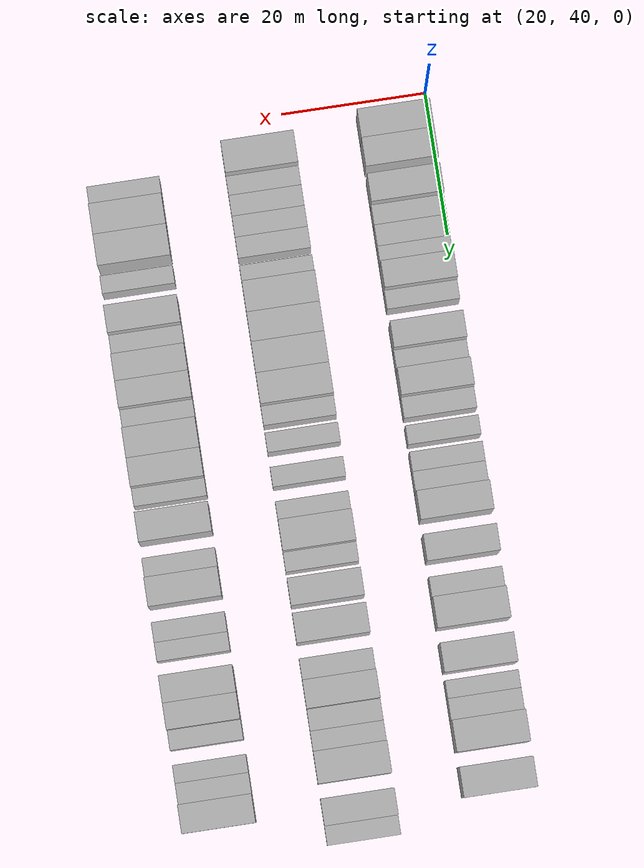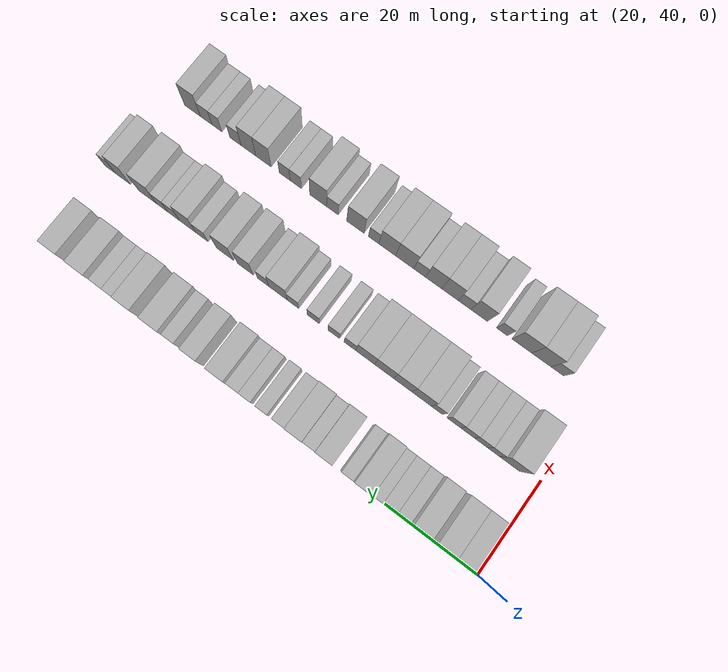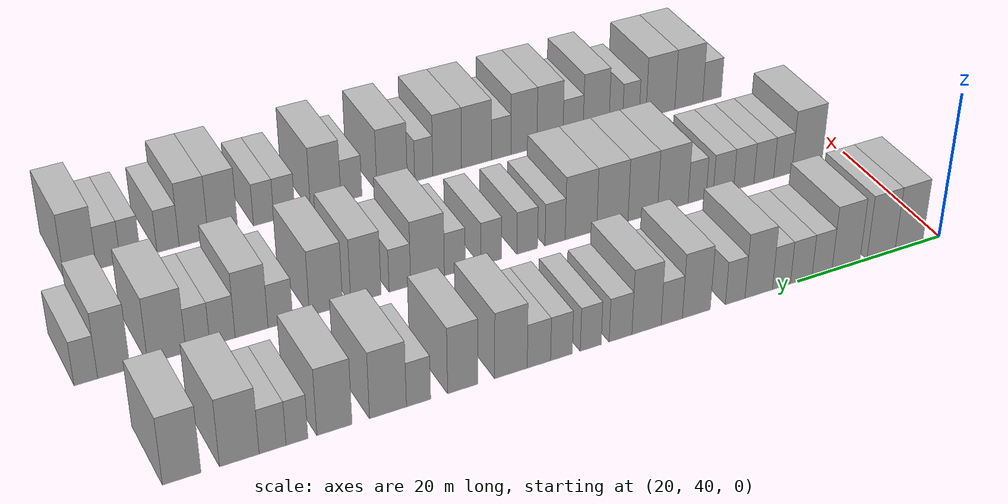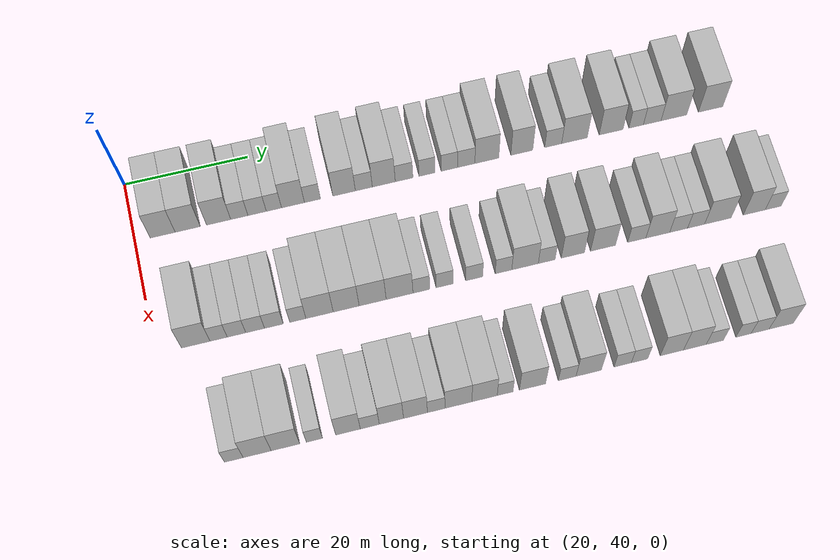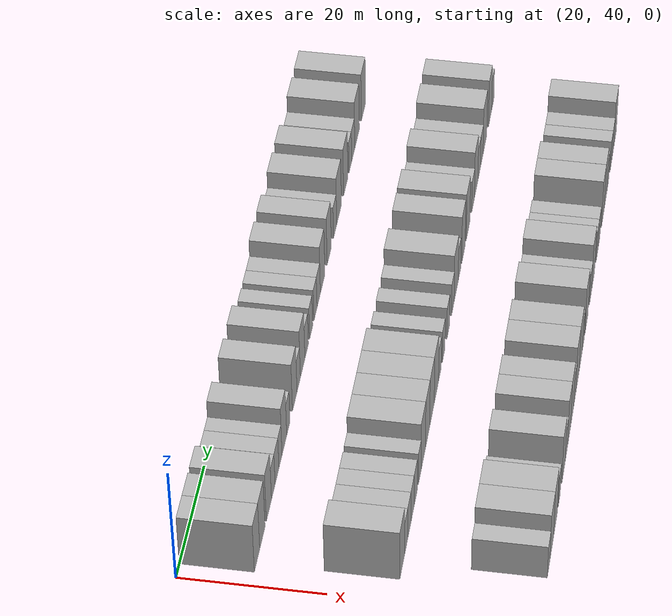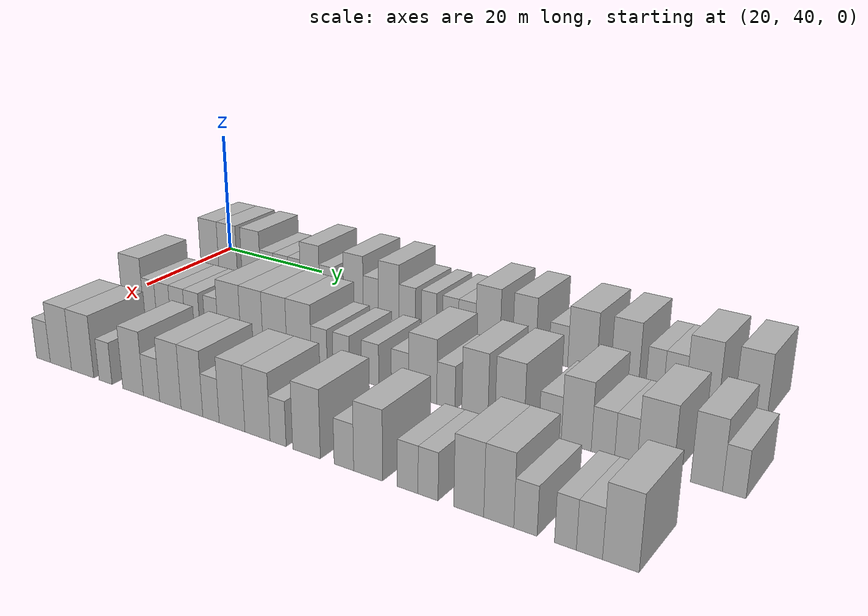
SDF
<sdf version="1.6">
 <world name="default">
  <model name="building_72">
   <static>1</static>
   <pose>25.0000 44.4156 0 0.000000 0.000000 0.000000</pose>
   <link name="link">
    <pose>0 0 4.50 0 0 0</pose>
    <collision name="collision"><geometry><box><size>10.0000 3.9680 9.0000</size></box></geometry></collision>
    <visual name="visual">
     <cast_shadows>0</cast_shadows>
     <geometry><box><size>10.0000 3.9680 9.0000</size></box></geometry>
     <material>
      <script>
       <uri>model://HANNAS_wall/materials/scripts</uri>
       <uri>model://HANNAS_wall/materials/textures</uri>
       <name>vrc/HANNAS_wall</name>
      </script>
     </material>
    </visual>
   </link>
  </model>
  <model name="building_73">
   <static>1</static>
   <pose>25.0000 48.4043 0 0.000000 0.000000 0.000000</pose>
   <link name="link">
    <pose>0 0 4.50 0 0 0</pose>
    <collision name="collision"><geometry><box><size>10.0000 4.0092 9.0000</size></box></geometry></collision>
    <visual name="visual">
     <cast_shadows>0</cast_shadows>
     <geometry><box><size>10.0000 4.0092 9.0000</size></box></geometry>
     <material>
      <script>
       <uri>model://HANNAS_wall/materials/scripts</uri>
       <uri>model://HANNAS_wall/materials/textures</uri>
       <name>vrc/HANNAS_wall</name>
      </script>
     </material>
    </visual>
   </link>
  </model>
  <model name="building_74">
   <static>1</static>
   <pose>25.0000 53.3539 0 0.000000 0.000000 0.000000</pose>
   <link name="link">
    <pose>0 0 4.50 0 0 0</pose>
    <collision name="collision"><geometry><box><size>10.0000 3.8900 9.0000</size></box></geometry></collision>
    <visual name="visual">
     <cast_shadows>0</cast_shadows>
     <geometry><box><size>10.0000 3.8900 9.0000</size></box></geometry>
     <material>
      <script>
       <uri>model://HANNAS_wall/materials/scripts</uri>
       <uri>model://HANNAS_wall/materials/textures</uri>
       <name>vrc/HANNAS_wall</name>
      </script>
     </material>
    </visual>
   </link>
  </model>
  <model name="building_75">
   <static>1</static>
   <pose>25.0000 56.6815 0 0.000000 0.000000 0.000000</pose>
   <link name="link">
    <pose>0 0 3.00 0 0 0</pose>
    <collision name="collision"><geometry><box><size>10.0000 2.7651 6.0000</size></box></geometry></collision>
    <visual name="visual">
     <cast_shadows>0</cast_shadows>
     <geometry><box><size>10.0000 2.7651 6.0000</size></box></geometry>
     <material>
      <script>
       <uri>model://HANNAS_wall/materials/scripts</uri>
       <uri>model://HANNAS_wall/materials/textures</uri>
       <name>vrc/HANNAS_wall</name>
      </script>
     </material>
    </visual>
   </link>
  </model>
  <model name="building_76">
   <static>1</static>
   <pose>25.0000 59.5427 0 0.000000 0.000000 0.000000</pose>
   <link name="link">
    <pose>0 0 3.00 0 0 0</pose>
    <collision name="collision"><geometry><box><size>10.0000 2.9574 6.0000</size></box></geometry></collision>
    <visual name="visual">
     <cast_shadows>0</cast_shadows>
     <geometry><box><size>10.0000 2.9574 6.0000</size></box></geometry>
     <material>
      <script>
       <uri>model://HANNAS_wall/materials/scripts</uri>
       <uri>model://HANNAS_wall/materials/textures</uri>
       <name>vrc/HANNAS_wall</name>
      </script>
     </material>
    </visual>
   </link>
  </model>
  <model name="building_77">
   <static>1</static>
   <pose>25.0000 62.2518 0 0.000000 0.000000 0.000000</pose>
   <link name="link">
    <pose>0 0 3.00 0 0 0</pose>
    <collision name="collision"><geometry><box><size>10.0000 2.4609 6.0000</size></box></geometry></collision>
    <visual name="visual">
     <cast_shadows>0</cast_shadows>
     <geometry><box><size>10.0000 2.4609 6.0000</size></box></geometry>
     <material>
      <script>
       <uri>model://HANNAS_wall/materials/scripts</uri>
       <uri>model://HANNAS_wall/materials/textures</uri>
       <name>vrc/HANNAS_wall</name>
      </script>
     </material>
    </visual>
   </link>
  </model>
  <model name="building_78">
   <static>1</static>
   <pose>25.0000 65.3346 0 0.000000 0.000000 0.000000</pose>
   <link name="link">
    <pose>0 0 4.50 0 0 0</pose>
    <collision name="collision"><geometry><box><size>10.0000 3.7047 9.0000</size></box></geometry></collision>
    <visual name="visual">
     <cast_shadows>0</cast_shadows>
     <geometry><box><size>10.0000 3.7047 9.0000</size></box></geometry>
     <material>
      <script>
       <uri>model://HANNAS_wall/materials/scripts</uri>
       <uri>model://HANNAS_wall/materials/textures</uri>
       <name>vrc/HANNAS_wall</name>
      </script>
     </material>
    </visual>
   </link>
  </model>
  <model name="building_79">
   <static>1</static>
   <pose>25.0000 68.4920 0 0.000000 0.000000 0.000000</pose>
   <link name="link">
    <pose>0 0 3.00 0 0 0</pose>
    <collision name="collision"><geometry><box><size>10.0000 2.6101 6.0000</size></box></geometry></collision>
    <visual name="visual">
     <cast_shadows>0</cast_shadows>
     <geometry><box><size>10.0000 2.6101 6.0000</size></box></geometry>
     <material>
      <script>
       <uri>model://HANNAS_wall/materials/scripts</uri>
       <uri>model://HANNAS_wall/materials/textures</uri>
       <name>vrc/HANNAS_wall</name>
      </script>
     </material>
    </visual>
   </link>
  </model>
  <model name="building_80">
   <static>1</static>
   <pose>25.0000 73.6323 0 0.000000 0.000000 0.000000</pose>
   <link name="link">
    <pose>0 0 4.50 0 0 0</pose>
    <collision name="collision"><geometry><box><size>10.0000 3.6704 9.0000</size></box></geometry></collision>
    <visual name="visual">
     <cast_shadows>0</cast_shadows>
     <geometry><box><size>10.0000 3.6704 9.0000</size></box></geometry>
     <material>
      <script>
       <uri>model://HANNAS_wall/materials/scripts</uri>
       <uri>model://HANNAS_wall/materials/textures</uri>
       <name>vrc/HANNAS_wall</name>
      </script>
     </material>
    </visual>
   </link>
  </model>
  <model name="building_81">
   <static>1</static>
   <pose>25.0000 76.8547 0 0.000000 0.000000 0.000000</pose>
   <link name="link">
    <pose>0 0 3.00 0 0 0</pose>
    <collision name="collision"><geometry><box><size>10.0000 2.7742 6.0000</size></box></geometry></collision>
    <visual name="visual">
     <cast_shadows>0</cast_shadows>
     <geometry><box><size>10.0000 2.7742 6.0000</size></box></geometry>
     <material>
      <script>
       <uri>model://HANNAS_wall/materials/scripts</uri>
       <uri>model://HANNAS_wall/materials/textures</uri>
       <name>vrc/HANNAS_wall</name>
      </script>
     </material>
    </visual>
   </link>
  </model>
  <model name="building_82">
   <static>1</static>
   <pose>25.0000 80.1167 0 0.000000 0.000000 0.000000</pose>
   <link name="link">
    <pose>0 0 4.50 0 0 0</pose>
    <collision name="collision"><geometry><box><size>10.0000 3.7498 9.0000</size></box></geometry></collision>
    <visual name="visual">
     <cast_shadows>0</cast_shadows>
     <geometry><box><size>10.0000 3.7498 9.0000</size></box></geometry>
     <material>
      <script>
       <uri>model://HANNAS_wall/materials/scripts</uri>
       <uri>model://HANNAS_wall/materials/textures</uri>
       <name>vrc/HANNAS_wall</name>
      </script>
     </material>
    </visual>
   </link>
  </model>
  <model name="building_83">
   <static>1</static>
   <pose>25.0000 83.4414 0 0.000000 0.000000 0.000000</pose>
   <link name="link">
    <pose>0 0 3.00 0 0 0</pose>
    <collision name="collision"><geometry><box><size>10.0000 2.8997 6.0000</size></box></geometry></collision>
    <visual name="visual">
     <cast_shadows>0</cast_shadows>
     <geometry><box><size>10.0000 2.8997 6.0000</size></box></geometry>
     <material>
      <script>
       <uri>model://HANNAS_wall/materials/scripts</uri>
       <uri>model://HANNAS_wall/materials/textures</uri>
       <name>vrc/HANNAS_wall</name>
      </script>
     </material>
    </visual>
   </link>
  </model>
  <model name="building_84">
   <static>1</static>
   <pose>25.0000 87.2093 0 0.000000 0.000000 0.000000</pose>
   <link name="link">
    <pose>0 0 3.00 0 0 0</pose>
    <collision name="collision"><geometry><box><size>10.0000 2.6360 6.0000</size></box></geometry></collision>
    <visual name="visual">
     <cast_shadows>0</cast_shadows>
     <geometry><box><size>10.0000 2.6360 6.0000</size></box></geometry>
     <material>
      <script>
       <uri>model://HANNAS_wall/materials/scripts</uri>
       <uri>model://HANNAS_wall/materials/textures</uri>
       <name>vrc/HANNAS_wall</name>
      </script>
     </material>
    </visual>
   </link>
  </model>
  <model name="building_85">
   <static>1</static>
   <pose>25.0000 90.8741 0 0.000000 0.000000 0.000000</pose>
   <link name="link">
    <pose>0 0 3.00 0 0 0</pose>
    <collision name="collision"><geometry><box><size>10.0000 2.6937 6.0000</size></box></geometry></collision>
    <visual name="visual">
     <cast_shadows>0</cast_shadows>
     <geometry><box><size>10.0000 2.6937 6.0000</size></box></geometry>
     <material>
      <script>
       <uri>model://HANNAS_wall/materials/scripts</uri>
       <uri>model://HANNAS_wall/materials/textures</uri>
       <name>vrc/HANNAS_wall</name>
      </script>
     </material>
    </visual>
   </link>
  </model>
  <model name="building_86">
   <static>1</static>
   <pose>25.0000 93.6597 0 0.000000 0.000000 0.000000</pose>
   <link name="link">
    <pose>0 0 3.00 0 0 0</pose>
    <collision name="collision"><geometry><box><size>10.0000 2.8775 6.0000</size></box></geometry></collision>
    <visual name="visual">
     <cast_shadows>0</cast_shadows>
     <geometry><box><size>10.0000 2.8775 6.0000</size></box></geometry>
     <material>
      <script>
       <uri>model://HANNAS_wall/materials/scripts</uri>
       <uri>model://HANNAS_wall/materials/textures</uri>
       <name>vrc/HANNAS_wall</name>
      </script>
     </material>
    </visual>
   </link>
  </model>
  <model name="building_87">
   <static>1</static>
   <pose>25.0000 97.0796 0 0.000000 0.000000 0.000000</pose>
   <link name="link">
    <pose>0 0 4.50 0 0 0</pose>
    <collision name="collision"><geometry><box><size>10.0000 3.9623 9.0000</size></box></geometry></collision>
    <visual name="visual">
     <cast_shadows>0</cast_shadows>
     <geometry><box><size>10.0000 3.9623 9.0000</size></box></geometry>
     <material>
      <script>
       <uri>model://HANNAS_wall/materials/scripts</uri>
       <uri>model://HANNAS_wall/materials/textures</uri>
       <name>vrc/HANNAS_wall</name>
      </script>
     </material>
    </visual>
   </link>
  </model>
  <model name="building_88">
   <static>1</static>
   <pose>25.0000 102.8813 0 0.000000 0.000000 0.000000</pose>
   <link name="link">
    <pose>0 0 4.50 0 0 0</pose>
    <collision name="collision"><geometry><box><size>10.0000 3.6410 9.0000</size></box></geometry></collision>
    <visual name="visual">
     <cast_shadows>0</cast_shadows>
     <geometry><box><size>10.0000 3.6410 9.0000</size></box></geometry>
     <material>
      <script>
       <uri>model://HANNAS_wall/materials/scripts</uri>
       <uri>model://HANNAS_wall/materials/textures</uri>
       <name>vrc/HANNAS_wall</name>
      </script>
     </material>
    </visual>
   </link>
  </model>
  <model name="building_89">
   <static>1</static>
   <pose>25.0000 108.1244 0 0.000000 0.000000 0.000000</pose>
   <link name="link">
    <pose>0 0 3.00 0 0 0</pose>
    <collision name="collision"><geometry><box><size>10.0000 2.8451 6.0000</size></box></geometry></collision>
    <visual name="visual">
     <cast_shadows>0</cast_shadows>
     <geometry><box><size>10.0000 2.8451 6.0000</size></box></geometry>
     <material>
      <script>
       <uri>model://HANNAS_wall/materials/scripts</uri>
       <uri>model://HANNAS_wall/materials/textures</uri>
       <name>vrc/HANNAS_wall</name>
      </script>
     </material>
    </visual>
   </link>
  </model>
  <model name="building_90">
   <static>1</static>
   <pose>25.0000 111.6880 0 0.000000 0.000000 0.000000</pose>
   <link name="link">
    <pose>0 0 4.50 0 0 0</pose>
    <collision name="collision"><geometry><box><size>10.0000 4.2822 9.0000</size></box></geometry></collision>
    <visual name="visual">
     <cast_shadows>0</cast_shadows>
     <geometry><box><size>10.0000 4.2822 9.0000</size></box></geometry>
     <material>
      <script>
       <uri>model://HANNAS_wall/materials/scripts</uri>
       <uri>model://HANNAS_wall/materials/textures</uri>
       <name>vrc/HANNAS_wall</name>
      </script>
     </material>
    </visual>
   </link>
  </model>
  <model name="building_91">
   <static>1</static>
   <pose>25.0000 117.8321 0 0.000000 0.000000 0.000000</pose>
   <link name="link">
    <pose>0 0 4.50 0 0 0</pose>
    <collision name="collision"><geometry><box><size>10.0000 4.0060 9.0000</size></box></geometry></collision>
    <visual name="visual">
     <cast_shadows>0</cast_shadows>
     <geometry><box><size>10.0000 4.0060 9.0000</size></box></geometry>
     <material>
      <script>
       <uri>model://HANNAS_wall/materials/scripts</uri>
       <uri>model://HANNAS_wall/materials/textures</uri>
       <name>vrc/HANNAS_wall</name>
      </script>
     </material>
    </visual>
   </link>
  </model>
  <model name="building_92">
   <static>1</static>
   <pose>25.0000 122.0588 0 0.000000 0.000000 0.000000</pose>
   <link name="link">
    <pose>0 0 3.00 0 0 0</pose>
    <collision name="collision"><geometry><box><size>10.0000 2.4473 6.0000</size></box></geometry></collision>
    <visual name="visual">
     <cast_shadows>0</cast_shadows>
     <geometry><box><size>10.0000 2.4473 6.0000</size></box></geometry>
     <material>
      <script>
       <uri>model://HANNAS_wall/materials/scripts</uri>
       <uri>model://HANNAS_wall/materials/textures</uri>
       <name>vrc/HANNAS_wall</name>
      </script>
     </material>
    </visual>
   </link>
  </model>
  <model name="building_93">
   <static>1</static>
   <pose>25.0000 124.7757 0 0.000000 0.000000 0.000000</pose>
   <link name="link">
    <pose>0 0 3.00 0 0 0</pose>
    <collision name="collision"><geometry><box><size>10.0000 2.9865 6.0000</size></box></geometry></collision>
    <visual name="visual">
     <cast_shadows>0</cast_shadows>
     <geometry><box><size>10.0000 2.9865 6.0000</size></box></geometry>
     <material>
      <script>
       <uri>model://HANNAS_wall/materials/scripts</uri>
       <uri>model://HANNAS_wall/materials/textures</uri>
       <name>vrc/HANNAS_wall</name>
      </script>
     </material>
    </visual>
   </link>
  </model>
  <model name="building_94">
   <static>1</static>
   <pose>25.0000 128.4444 0 0.000000 0.000000 0.000000</pose>
   <link name="link">
    <pose>0 0 4.50 0 0 0</pose>
    <collision name="collision"><geometry><box><size>10.0000 4.3510 9.0000</size></box></geometry></collision>
    <visual name="visual">
     <cast_shadows>0</cast_shadows>
     <geometry><box><size>10.0000 4.3510 9.0000</size></box></geometry>
     <material>
      <script>
       <uri>model://HANNAS_wall/materials/scripts</uri>
       <uri>model://HANNAS_wall/materials/textures</uri>
       <name>vrc/HANNAS_wall</name>
      </script>
     </material>
    </visual>
   </link>
  </model>
  <model name="building_95">
   <static>1</static>
   <pose>25.0000 134.6922 0 0.000000 0.000000 0.000000</pose>
   <link name="link">
    <pose>0 0 4.50 0 0 0</pose>
    <collision name="collision"><geometry><box><size>10.0000 4.1447 9.0000</size></box></geometry></collision>
    <visual name="visual">
     <cast_shadows>0</cast_shadows>
     <geometry><box><size>10.0000 4.1447 9.0000</size></box></geometry>
     <material>
      <script>
       <uri>model://HANNAS_wall/materials/scripts</uri>
       <uri>model://HANNAS_wall/materials/textures</uri>
       <name>vrc/HANNAS_wall</name>
      </script>
     </material>
    </visual>
   </link>
  </model>
  <model name="building_194">
   <static>1</static>
   <pose>44.0000 46.1868 0 0.000000 0.000000 0.000000</pose>
   <link name="link">
    <pose>0 0 4.50 0 0 0</pose>
    <collision name="collision"><geometry><box><size>10.0000 4.4482 9.0000</size></box></geometry></collision>
    <visual name="visual">
     <cast_shadows>0</cast_shadows>
     <geometry><box><size>10.0000 4.4482 9.0000</size></box></geometry>
     <material>
      <script>
       <uri>model://HANNAS_wall/materials/scripts</uri>
       <uri>model://HANNAS_wall/materials/textures</uri>
       <name>vrc/HANNAS_wall</name>
      </script>
     </material>
    </visual>
   </link>
  </model>
  <model name="building_195">
   <static>1</static>
   <pose>44.0000 49.7414 0 0.000000 0.000000 0.000000</pose>
   <link name="link">
    <pose>0 0 3.00 0 0 0</pose>
    <collision name="collision"><geometry><box><size>10.0000 2.6610 6.0000</size></box></geometry></collision>
    <visual name="visual">
     <cast_shadows>0</cast_shadows>
     <geometry><box><size>10.0000 2.6610 6.0000</size></box></geometry>
     <material>
      <script>
       <uri>model://HANNAS_wall/materials/scripts</uri>
       <uri>model://HANNAS_wall/materials/textures</uri>
       <name>vrc/HANNAS_wall</name>
      </script>
     </material>
    </visual>
   </link>
  </model>
  <model name="building_196">
   <static>1</static>
   <pose>44.0000 52.5175 0 0.000000 0.000000 0.000000</pose>
   <link name="link">
    <pose>0 0 3.00 0 0 0</pose>
    <collision name="collision"><geometry><box><size>10.0000 2.8911 6.0000</size></box></geometry></collision>
    <visual name="visual">
     <cast_shadows>0</cast_shadows>
     <geometry><box><size>10.0000 2.8911 6.0000</size></box></geometry>
     <material>
      <script>
       <uri>model://HANNAS_wall/materials/scripts</uri>
       <uri>model://HANNAS_wall/materials/textures</uri>
       <name>vrc/HANNAS_wall</name>
      </script>
     </material>
    </visual>
   </link>
  </model>
  <model name="building_197">
   <static>1</static>
   <pose>44.0000 55.4296 0 0.000000 0.000000 0.000000</pose>
   <link name="link">
    <pose>0 0 3.00 0 0 0</pose>
    <collision name="collision"><geometry><box><size>10.0000 2.9331 6.0000</size></box></geometry></collision>
    <visual name="visual">
     <cast_shadows>0</cast_shadows>
     <geometry><box><size>10.0000 2.9331 6.0000</size></box></geometry>
     <material>
      <script>
       <uri>model://HANNAS_wall/materials/scripts</uri>
       <uri>model://HANNAS_wall/materials/textures</uri>
       <name>vrc/HANNAS_wall</name>
      </script>
     </material>
    </visual>
   </link>
  </model>
  <model name="building_198">
   <static>1</static>
   <pose>44.0000 58.3668 0 0.000000 0.000000 0.000000</pose>
   <link name="link">
    <pose>0 0 3.00 0 0 0</pose>
    <collision name="collision"><geometry><box><size>10.0000 2.9414 6.0000</size></box></geometry></collision>
    <visual name="visual">
     <cast_shadows>0</cast_shadows>
     <geometry><box><size>10.0000 2.9414 6.0000</size></box></geometry>
     <material>
      <script>
       <uri>model://HANNAS_wall/materials/scripts</uri>
       <uri>model://HANNAS_wall/materials/textures</uri>
       <name>vrc/HANNAS_wall</name>
      </script>
     </material>
    </visual>
   </link>
  </model>
  <model name="building_199">
   <static>1</static>
   <pose>44.0000 62.1112 0 0.000000 0.000000 0.000000</pose>
   <link name="link">
    <pose>0 0 3.00 0 0 0</pose>
    <collision name="collision"><geometry><box><size>10.0000 2.5472 6.0000</size></box></geometry></collision>
    <visual name="visual">
     <cast_shadows>0</cast_shadows>
     <geometry><box><size>10.0000 2.5472 6.0000</size></box></geometry>
     <material>
      <script>
       <uri>model://HANNAS_wall/materials/scripts</uri>
       <uri>model://HANNAS_wall/materials/textures</uri>
       <name>vrc/HANNAS_wall</name>
      </script>
     </material>
    </visual>
   </link>
  </model>
  <model name="building_200">
   <static>1</static>
   <pose>44.0000 65.5334 0 0.000000 0.000000 0.000000</pose>
   <link name="link">
    <pose>0 0 4.50 0 0 0</pose>
    <collision name="collision"><geometry><box><size>10.0000 4.2972 9.0000</size></box></geometry></collision>
    <visual name="visual">
     <cast_shadows>0</cast_shadows>
     <geometry><box><size>10.0000 4.2972 9.0000</size></box></geometry>
     <material>
      <script>
       <uri>model://HANNAS_wall/materials/scripts</uri>
       <uri>model://HANNAS_wall/materials/textures</uri>
       <name>vrc/HANNAS_wall</name>
      </script>
     </material>
    </visual>
   </link>
  </model>
  <model name="building_201">
   <static>1</static>
   <pose>44.0000 69.7283 0 0.000000 0.000000 0.000000</pose>
   <link name="link">
    <pose>0 0 4.50 0 0 0</pose>
    <collision name="collision"><geometry><box><size>10.0000 4.0927 9.0000</size></box></geometry></collision>
    <visual name="visual">
     <cast_shadows>0</cast_shadows>
     <geometry><box><size>10.0000 4.0927 9.0000</size></box></geometry>
     <material>
      <script>
       <uri>model://HANNAS_wall/materials/scripts</uri>
       <uri>model://HANNAS_wall/materials/textures</uri>
       <name>vrc/HANNAS_wall</name>
      </script>
     </material>
    </visual>
   </link>
  </model>
  <model name="building_202">
   <static>1</static>
   <pose>44.0000 73.9166 0 0.000000 0.000000 0.000000</pose>
   <link name="link">
    <pose>0 0 4.50 0 0 0</pose>
    <collision name="collision"><geometry><box><size>10.0000 4.2838 9.0000</size></box></geometry></collision>
    <visual name="visual">
     <cast_shadows>0</cast_shadows>
     <geometry><box><size>10.0000 4.2838 9.0000</size></box></geometry>
     <material>
      <script>
       <uri>model://HANNAS_wall/materials/scripts</uri>
       <uri>model://HANNAS_wall/materials/textures</uri>
       <name>vrc/HANNAS_wall</name>
      </script>
     </material>
    </visual>
   </link>
  </model>
  <model name="building_203">
   <static>1</static>
   <pose>44.0000 78.1900 0 0.000000 0.000000 0.000000</pose>
   <link name="link">
    <pose>0 0 4.50 0 0 0</pose>
    <collision name="collision"><geometry><box><size>10.0000 4.2629 9.0000</size></box></geometry></collision>
    <visual name="visual">
     <cast_shadows>0</cast_shadows>
     <geometry><box><size>10.0000 4.2629 9.0000</size></box></geometry>
     <material>
      <script>
       <uri>model://HANNAS_wall/materials/scripts</uri>
       <uri>model://HANNAS_wall/materials/textures</uri>
       <name>vrc/HANNAS_wall</name>
      </script>
     </material>
    </visual>
   </link>
  </model>
  <model name="building_204">
   <static>1</static>
   <pose>44.0000 81.6634 0 0.000000 0.000000 0.000000</pose>
   <link name="link">
    <pose>0 0 3.00 0 0 0</pose>
    <collision name="collision"><geometry><box><size>10.0000 2.6838 6.0000</size></box></geometry></collision>
    <visual name="visual">
     <cast_shadows>0</cast_shadows>
     <geometry><box><size>10.0000 2.6838 6.0000</size></box></geometry>
     <material>
      <script>
       <uri>model://HANNAS_wall/materials/scripts</uri>
       <uri>model://HANNAS_wall/materials/textures</uri>
       <name>vrc/HANNAS_wall</name>
      </script>
     </material>
    </visual>
   </link>
  </model>
  <model name="building_205">
   <static>1</static>
   <pose>44.0000 85.3662 0 0.000000 0.000000 0.000000</pose>
   <link name="link">
    <pose>0 0 3.00 0 0 0</pose>
    <collision name="collision"><geometry><box><size>10.0000 2.7219 6.0000</size></box></geometry></collision>
    <visual name="visual">
     <cast_shadows>0</cast_shadows>
     <geometry><box><size>10.0000 2.7219 6.0000</size></box></geometry>
     <material>
      <script>
       <uri>model://HANNAS_wall/materials/scripts</uri>
       <uri>model://HANNAS_wall/materials/textures</uri>
       <name>vrc/HANNAS_wall</name>
      </script>
     </material>
    </visual>
   </link>
  </model>
  <model name="building_206">
   <static>1</static>
   <pose>44.0000 90.0968 0 0.000000 0.000000 0.000000</pose>
   <link name="link">
    <pose>0 0 3.00 0 0 0</pose>
    <collision name="collision"><geometry><box><size>10.0000 2.7391 6.0000</size></box></geometry></collision>
    <visual name="visual">
     <cast_shadows>0</cast_shadows>
     <geometry><box><size>10.0000 2.7391 6.0000</size></box></geometry>
     <material>
      <script>
       <uri>model://HANNAS_wall/materials/scripts</uri>
       <uri>model://HANNAS_wall/materials/textures</uri>
       <name>vrc/HANNAS_wall</name>
      </script>
     </material>
    </visual>
   </link>
  </model>
  <model name="building_207">
   <static>1</static>
   <pose>44.0000 94.8058 0 0.000000 0.000000 0.000000</pose>
   <link name="link">
    <pose>0 0 3.00 0 0 0</pose>
    <collision name="collision"><geometry><box><size>10.0000 2.6789 6.0000</size></box></geometry></collision>
    <visual name="visual">
     <cast_shadows>0</cast_shadows>
     <geometry><box><size>10.0000 2.6789 6.0000</size></box></geometry>
     <material>
      <script>
       <uri>model://HANNAS_wall/materials/scripts</uri>
       <uri>model://HANNAS_wall/materials/textures</uri>
       <name>vrc/HANNAS_wall</name>
      </script>
     </material>
    </visual>
   </link>
  </model>
  <model name="building_208">
   <static>1</static>
   <pose>44.0000 98.2878 0 0.000000 0.000000 0.000000</pose>
   <link name="link">
    <pose>0 0 4.50 0 0 0</pose>
    <collision name="collision"><geometry><box><size>10.0000 4.2851 9.0000</size></box></geometry></collision>
    <visual name="visual">
     <cast_shadows>0</cast_shadows>
     <geometry><box><size>10.0000 4.2851 9.0000</size></box></geometry>
     <material>
      <script>
       <uri>model://HANNAS_wall/materials/scripts</uri>
       <uri>model://HANNAS_wall/materials/textures</uri>
       <name>vrc/HANNAS_wall</name>
      </script>
     </material>
    </visual>
   </link>
  </model>
  <model name="building_209">
   <static>1</static>
   <pose>44.0000 101.7869 0 0.000000 0.000000 0.000000</pose>
   <link name="link">
    <pose>0 0 3.00 0 0 0</pose>
    <collision name="collision"><geometry><box><size>10.0000 2.7131 6.0000</size></box></geometry></collision>
    <visual name="visual">
     <cast_shadows>0</cast_shadows>
     <geometry><box><size>10.0000 2.7131 6.0000</size></box></geometry>
     <material>
      <script>
       <uri>model://HANNAS_wall/materials/scripts</uri>
       <uri>model://HANNAS_wall/materials/textures</uri>
       <name>vrc/HANNAS_wall</name>
      </script>
     </material>
    </visual>
   </link>
  </model>
  <model name="building_210">
   <static>1</static>
   <pose>44.0000 106.0235 0 0.000000 0.000000 0.000000</pose>
   <link name="link">
    <pose>0 0 4.50 0 0 0</pose>
    <collision name="collision"><geometry><box><size>10.0000 3.7601 9.0000</size></box></geometry></collision>
    <visual name="visual">
     <cast_shadows>0</cast_shadows>
     <geometry><box><size>10.0000 3.7601 9.0000</size></box></geometry>
     <material>
      <script>
       <uri>model://HANNAS_wall/materials/scripts</uri>
       <uri>model://HANNAS_wall/materials/textures</uri>
       <name>vrc/HANNAS_wall</name>
      </script>
     </material>
    </visual>
   </link>
  </model>
  <model name="building_211">
   <static>1</static>
   <pose>44.0000 110.9353 0 0.000000 0.000000 0.000000</pose>
   <link name="link">
    <pose>0 0 4.50 0 0 0</pose>
    <collision name="collision"><geometry><box><size>10.0000 4.0637 9.0000</size></box></geometry></collision>
    <visual name="visual">
     <cast_shadows>0</cast_shadows>
     <geometry><box><size>10.0000 4.0637 9.0000</size></box></geometry>
     <material>
      <script>
       <uri>model://HANNAS_wall/materials/scripts</uri>
       <uri>model://HANNAS_wall/materials/textures</uri>
       <name>vrc/HANNAS_wall</name>
      </script>
     </material>
    </visual>
   </link>
  </model>
  <model name="building_212">
   <static>1</static>
   <pose>44.0000 116.4594 0 0.000000 0.000000 0.000000</pose>
   <link name="link">
    <pose>0 0 3.00 0 0 0</pose>
    <collision name="collision"><geometry><box><size>10.0000 2.9844 6.0000</size></box></geometry></collision>
    <visual name="visual">
     <cast_shadows>0</cast_shadows>
     <geometry><box><size>10.0000 2.9844 6.0000</size></box></geometry>
     <material>
      <script>
       <uri>model://HANNAS_wall/materials/scripts</uri>
       <uri>model://HANNAS_wall/materials/textures</uri>
       <name>vrc/HANNAS_wall</name>
      </script>
     </material>
    </visual>
   </link>
  </model>
  <model name="building_213">
   <static>1</static>
   <pose>44.0000 119.9058 0 0.000000 0.000000 0.000000</pose>
   <link name="link">
    <pose>0 0 4.50 0 0 0</pose>
    <collision name="collision"><geometry><box><size>10.0000 3.9085 9.0000</size></box></geometry></collision>
    <visual name="visual">
     <cast_shadows>0</cast_shadows>
     <geometry><box><size>10.0000 3.9085 9.0000</size></box></geometry>
     <material>
      <script>
       <uri>model://HANNAS_wall/materials/scripts</uri>
       <uri>model://HANNAS_wall/materials/textures</uri>
       <name>vrc/HANNAS_wall</name>
      </script>
     </material>
    </visual>
   </link>
  </model>
  <model name="building_214">
   <static>1</static>
   <pose>44.0000 123.3424 0 0.000000 0.000000 0.000000</pose>
   <link name="link">
    <pose>0 0 3.00 0 0 0</pose>
    <collision name="collision"><geometry><box><size>10.0000 2.9648 6.0000</size></box></geometry></collision>
    <visual name="visual">
     <cast_shadows>0</cast_shadows>
     <geometry><box><size>10.0000 2.9648 6.0000</size></box></geometry>
     <material>
      <script>
       <uri>model://HANNAS_wall/materials/scripts</uri>
       <uri>model://HANNAS_wall/materials/textures</uri>
       <name>vrc/HANNAS_wall</name>
      </script>
     </material>
    </visual>
   </link>
  </model>
  <model name="building_215">
   <static>1</static>
   <pose>44.0000 126.2184 0 0.000000 0.000000 0.000000</pose>
   <link name="link">
    <pose>0 0 3.00 0 0 0</pose>
    <collision name="collision"><geometry><box><size>10.0000 2.7871 6.0000</size></box></geometry></collision>
    <visual name="visual">
     <cast_shadows>0</cast_shadows>
     <geometry><box><size>10.0000 2.7871 6.0000</size></box></geometry>
     <material>
      <script>
       <uri>model://HANNAS_wall/materials/scripts</uri>
       <uri>model://HANNAS_wall/materials/textures</uri>
       <name>vrc/HANNAS_wall</name>
      </script>
     </material>
    </visual>
   </link>
  </model>
  <model name="building_216">
   <static>1</static>
   <pose>44.0000 129.8113 0 0.000000 0.000000 0.000000</pose>
   <link name="link">
    <pose>0 0 4.50 0 0 0</pose>
    <collision name="collision"><geometry><box><size>10.0000 4.3987 9.0000</size></box></geometry></collision>
    <visual name="visual">
     <cast_shadows>0</cast_shadows>
     <geometry><box><size>10.0000 4.3987 9.0000</size></box></geometry>
     <material>
      <script>
       <uri>model://HANNAS_wall/materials/scripts</uri>
       <uri>model://HANNAS_wall/materials/textures</uri>
       <name>vrc/HANNAS_wall</name>
      </script>
     </material>
    </visual>
   </link>
  </model>
  <model name="building_217">
   <static>1</static>
   <pose>44.0000 135.8437 0 0.000000 0.000000 0.000000</pose>
   <link name="link">
    <pose>0 0 4.50 0 0 0</pose>
    <collision name="collision"><geometry><box><size>10.0000 3.6663 9.0000</size></box></geometry></collision>
    <visual name="visual">
     <cast_shadows>0</cast_shadows>
     <geometry><box><size>10.0000 3.6663 9.0000</size></box></geometry>
     <material>
      <script>
       <uri>model://HANNAS_wall/materials/scripts</uri>
       <uri>model://HANNAS_wall/materials/textures</uri>
       <name>vrc/HANNAS_wall</name>
      </script>
     </material>
    </visual>
   </link>
  </model>
  <model name="building_218">
   <static>1</static>
   <pose>44.0000 139.0019 0 0.000000 0.000000 0.000000</pose>
   <link name="link">
    <pose>0 0 3.00 0 0 0</pose>
    <collision name="collision"><geometry><box><size>10.0000 2.6500 6.0000</size></box></geometry></collision>
    <visual name="visual">
     <cast_shadows>0</cast_shadows>
     <geometry><box><size>10.0000 2.6500 6.0000</size></box></geometry>
     <material>
      <script>
       <uri>model://HANNAS_wall/materials/scripts</uri>
       <uri>model://HANNAS_wall/materials/textures</uri>
       <name>vrc/HANNAS_wall</name>
      </script>
     </material>
    </visual>
   </link>
  </model>
  <model name="building_309">
   <static>1</static>
   <pose>63.0000 48.4061 0 0.000000 0.000000 0.000000</pose>
   <link name="link">
    <pose>0 0 3.00 0 0 0</pose>
    <collision name="collision"><geometry><box><size>10.0000 2.8229 6.0000</size></box></geometry></collision>
    <visual name="visual">
     <cast_shadows>0</cast_shadows>
     <geometry><box><size>10.0000 2.8229 6.0000</size></box></geometry>
     <material>
      <script>
       <uri>model://HANNAS_wall/materials/scripts</uri>
       <uri>model://HANNAS_wall/materials/textures</uri>
       <name>vrc/HANNAS_wall</name>
      </script>
     </material>
    </visual>
   </link>
  </model>
  <model name="building_310">
   <static>1</static>
   <pose>63.0000 51.9373 0 0.000000 0.000000 0.000000</pose>
   <link name="link">
    <pose>0 0 4.50 0 0 0</pose>
    <collision name="collision"><geometry><box><size>10.0000 4.2394 9.0000</size></box></geometry></collision>
    <visual name="visual">
     <cast_shadows>0</cast_shadows>
     <geometry><box><size>10.0000 4.2394 9.0000</size></box></geometry>
     <material>
      <script>
       <uri>model://HANNAS_wall/materials/scripts</uri>
       <uri>model://HANNAS_wall/materials/textures</uri>
       <name>vrc/HANNAS_wall</name>
      </script>
     </material>
    </visual>
   </link>
  </model>
  <model name="building_311">
   <static>1</static>
   <pose>63.0000 56.2301 0 0.000000 0.000000 0.000000</pose>
   <link name="link">
    <pose>0 0 4.50 0 0 0</pose>
    <collision name="collision"><geometry><box><size>10.0000 4.3463 9.0000</size></box></geometry></collision>
    <visual name="visual">
     <cast_shadows>0</cast_shadows>
     <geometry><box><size>10.0000 4.3463 9.0000</size></box></geometry>
     <material>
      <script>
       <uri>model://HANNAS_wall/materials/scripts</uri>
       <uri>model://HANNAS_wall/materials/textures</uri>
       <name>vrc/HANNAS_wall</name>
      </script>
     </material>
    </visual>
   </link>
  </model>
  <model name="building_312">
   <static>1</static>
   <pose>63.0000 60.6372 0 0.000000 0.000000 0.000000</pose>
   <link name="link">
    <pose>0 0 3.00 0 0 0</pose>
    <collision name="collision"><geometry><box><size>10.0000 2.4679 6.0000</size></box></geometry></collision>
    <visual name="visual">
     <cast_shadows>0</cast_shadows>
     <geometry><box><size>10.0000 2.4679 6.0000</size></box></geometry>
     <material>
      <script>
       <uri>model://HANNAS_wall/materials/scripts</uri>
       <uri>model://HANNAS_wall/materials/textures</uri>
       <name>vrc/HANNAS_wall</name>
      </script>
     </material>
    </visual>
   </link>
  </model>
  <model name="building_313">
   <static>1</static>
   <pose>63.0000 65.7612 0 0.000000 0.000000 0.000000</pose>
   <link name="link">
    <pose>0 0 4.50 0 0 0</pose>
    <collision name="collision"><geometry><box><size>10.0000 3.7800 9.0000</size></box></geometry></collision>
    <visual name="visual">
     <cast_shadows>0</cast_shadows>
     <geometry><box><size>10.0000 3.7800 9.0000</size></box></geometry>
     <material>
      <script>
       <uri>model://HANNAS_wall/materials/scripts</uri>
       <uri>model://HANNAS_wall/materials/textures</uri>
       <name>vrc/HANNAS_wall</name>
      </script>
     </material>
    </visual>
   </link>
  </model>
  <model name="building_314">
   <static>1</static>
   <pose>63.0000 69.1048 0 0.000000 0.000000 0.000000</pose>
   <link name="link">
    <pose>0 0 3.00 0 0 0</pose>
    <collision name="collision"><geometry><box><size>10.0000 2.9072 6.0000</size></box></geometry></collision>
    <visual name="visual">
     <cast_shadows>0</cast_shadows>
     <geometry><box><size>10.0000 2.9072 6.0000</size></box></geometry>
     <material>
      <script>
       <uri>model://HANNAS_wall/materials/scripts</uri>
       <uri>model://HANNAS_wall/materials/textures</uri>
       <name>vrc/HANNAS_wall</name>
      </script>
     </material>
    </visual>
   </link>
  </model>
  <model name="building_315">
   <static>1</static>
   <pose>63.0000 72.4210 0 0.000000 0.000000 0.000000</pose>
   <link name="link">
    <pose>0 0 4.50 0 0 0</pose>
    <collision name="collision"><geometry><box><size>10.0000 3.7252 9.0000</size></box></geometry></collision>
    <visual name="visual">
     <cast_shadows>0</cast_shadows>
     <geometry><box><size>10.0000 3.7252 9.0000</size></box></geometry>
     <material>
      <script>
       <uri>model://HANNAS_wall/materials/scripts</uri>
       <uri>model://HANNAS_wall/materials/textures</uri>
       <name>vrc/HANNAS_wall</name>
      </script>
     </material>
    </visual>
   </link>
  </model>
  <model name="building_316">
   <static>1</static>
   <pose>63.0000 76.1248 0 0.000000 0.000000 0.000000</pose>
   <link name="link">
    <pose>0 0 4.50 0 0 0</pose>
    <collision name="collision"><geometry><box><size>10.0000 3.6825 9.0000</size></box></geometry></collision>
    <visual name="visual">
     <cast_shadows>0</cast_shadows>
     <geometry><box><size>10.0000 3.6825 9.0000</size></box></geometry>
     <material>
      <script>
       <uri>model://HANNAS_wall/materials/scripts</uri>
       <uri>model://HANNAS_wall/materials/textures</uri>
       <name>vrc/HANNAS_wall</name>
      </script>
     </material>
    </visual>
   </link>
  </model>
  <model name="building_317">
   <static>1</static>
   <pose>63.0000 79.3261 0 0.000000 0.000000 0.000000</pose>
   <link name="link">
    <pose>0 0 3.00 0 0 0</pose>
    <collision name="collision"><geometry><box><size>10.0000 2.7201 6.0000</size></box></geometry></collision>
    <visual name="visual">
     <cast_shadows>0</cast_shadows>
     <geometry><box><size>10.0000 2.7201 6.0000</size></box></geometry>
     <material>
      <script>
       <uri>model://HANNAS_wall/materials/scripts</uri>
       <uri>model://HANNAS_wall/materials/textures</uri>
       <name>vrc/HANNAS_wall</name>
      </script>
     </material>
    </visual>
   </link>
  </model>
  <model name="building_318">
   <static>1</static>
   <pose>63.0000 82.7709 0 0.000000 0.000000 0.000000</pose>
   <link name="link">
    <pose>0 0 4.50 0 0 0</pose>
    <collision name="collision"><geometry><box><size>10.0000 4.1697 9.0000</size></box></geometry></collision>
    <visual name="visual">
     <cast_shadows>0</cast_shadows>
     <geometry><box><size>10.0000 4.1697 9.0000</size></box></geometry>
     <material>
      <script>
       <uri>model://HANNAS_wall/materials/scripts</uri>
       <uri>model://HANNAS_wall/materials/textures</uri>
       <name>vrc/HANNAS_wall</name>
      </script>
     </material>
    </visual>
   </link>
  </model>
  <model name="building_319">
   <static>1</static>
   <pose>63.0000 86.8259 0 0.000000 0.000000 0.000000</pose>
   <link name="link">
    <pose>0 0 4.50 0 0 0</pose>
    <collision name="collision"><geometry><box><size>10.0000 3.9404 9.0000</size></box></geometry></collision>
    <visual name="visual">
     <cast_shadows>0</cast_shadows>
     <geometry><box><size>10.0000 3.9404 9.0000</size></box></geometry>
     <material>
      <script>
       <uri>model://HANNAS_wall/materials/scripts</uri>
       <uri>model://HANNAS_wall/materials/textures</uri>
       <name>vrc/HANNAS_wall</name>
      </script>
     </material>
    </visual>
   </link>
  </model>
  <model name="building_320">
   <static>1</static>
   <pose>63.0000 90.0294 0 0.000000 0.000000 0.000000</pose>
   <link name="link">
    <pose>0 0 3.00 0 0 0</pose>
    <collision name="collision"><geometry><box><size>10.0000 2.4665 6.0000</size></box></geometry></collision>
    <visual name="visual">
     <cast_shadows>0</cast_shadows>
     <geometry><box><size>10.0000 2.4665 6.0000</size></box></geometry>
     <material>
      <script>
       <uri>model://HANNAS_wall/materials/scripts</uri>
       <uri>model://HANNAS_wall/materials/textures</uri>
       <name>vrc/HANNAS_wall</name>
      </script>
     </material>
    </visual>
   </link>
  </model>
  <model name="building_321">
   <static>1</static>
   <pose>63.0000 94.3096 0 0.000000 0.000000 0.000000</pose>
   <link name="link">
    <pose>0 0 4.50 0 0 0</pose>
    <collision name="collision"><geometry><box><size>10.0000 4.0940 9.0000</size></box></geometry></collision>
    <visual name="visual">
     <cast_shadows>0</cast_shadows>
     <geometry><box><size>10.0000 4.0940 9.0000</size></box></geometry>
     <material>
      <script>
       <uri>model://HANNAS_wall/materials/scripts</uri>
       <uri>model://HANNAS_wall/materials/textures</uri>
       <name>vrc/HANNAS_wall</name>
      </script>
     </material>
    </visual>
   </link>
  </model>
  <model name="building_322">
   <static>1</static>
   <pose>63.0000 99.7478 0 0.000000 0.000000 0.000000</pose>
   <link name="link">
    <pose>0 0 3.00 0 0 0</pose>
    <collision name="collision"><geometry><box><size>10.0000 2.7824 6.0000</size></box></geometry></collision>
    <visual name="visual">
     <cast_shadows>0</cast_shadows>
     <geometry><box><size>10.0000 2.7824 6.0000</size></box></geometry>
     <material>
      <script>
       <uri>model://HANNAS_wall/materials/scripts</uri>
       <uri>model://HANNAS_wall/materials/textures</uri>
       <name>vrc/HANNAS_wall</name>
      </script>
     </material>
    </visual>
   </link>
  </model>
  <model name="building_323">
   <static>1</static>
   <pose>63.0000 103.1396 0 0.000000 0.000000 0.000000</pose>
   <link name="link">
    <pose>0 0 4.50 0 0 0</pose>
    <collision name="collision"><geometry><box><size>10.0000 4.0011 9.0000</size></box></geometry></collision>
    <visual name="visual">
     <cast_shadows>0</cast_shadows>
     <geometry><box><size>10.0000 4.0011 9.0000</size></box></geometry>
     <material>
      <script>
       <uri>model://HANNAS_wall/materials/scripts</uri>
       <uri>model://HANNAS_wall/materials/textures</uri>
       <name>vrc/HANNAS_wall</name>
      </script>
     </material>
    </visual>
   </link>
  </model>
  <model name="building_324">
   <static>1</static>
   <pose>63.0000 108.5069 0 0.000000 0.000000 0.000000</pose>
   <link name="link">
    <pose>0 0 3.00 0 0 0</pose>
    <collision name="collision"><geometry><box><size>10.0000 2.7334 6.0000</size></box></geometry></collision>
    <visual name="visual">
     <cast_shadows>0</cast_shadows>
     <geometry><box><size>10.0000 2.7334 6.0000</size></box></geometry>
     <material>
      <script>
       <uri>model://HANNAS_wall/materials/scripts</uri>
       <uri>model://HANNAS_wall/materials/textures</uri>
       <name>vrc/HANNAS_wall</name>
      </script>
     </material>
    </visual>
   </link>
  </model>
  <model name="building_325">
   <static>1</static>
   <pose>63.0000 111.1775 0 0.000000 0.000000 0.000000</pose>
   <link name="link">
    <pose>0 0 3.00 0 0 0</pose>
    <collision name="collision"><geometry><box><size>10.0000 2.6077 6.0000</size></box></geometry></collision>
    <visual name="visual">
     <cast_shadows>0</cast_shadows>
     <geometry><box><size>10.0000 2.6077 6.0000</size></box></geometry>
     <material>
      <script>
       <uri>model://HANNAS_wall/materials/scripts</uri>
       <uri>model://HANNAS_wall/materials/textures</uri>
       <name>vrc/HANNAS_wall</name>
      </script>
     </material>
    </visual>
   </link>
  </model>
  <model name="building_326">
   <static>1</static>
   <pose>63.0000 116.3446 0 0.000000 0.000000 0.000000</pose>
   <link name="link">
    <pose>0 0 4.50 0 0 0</pose>
    <collision name="collision"><geometry><box><size>10.0000 3.7267 9.0000</size></box></geometry></collision>
    <visual name="visual">
     <cast_shadows>0</cast_shadows>
     <geometry><box><size>10.0000 3.7267 9.0000</size></box></geometry>
     <material>
      <script>
       <uri>model://HANNAS_wall/materials/scripts</uri>
       <uri>model://HANNAS_wall/materials/textures</uri>
       <name>vrc/HANNAS_wall</name>
      </script>
     </material>
    </visual>
   </link>
  </model>
  <model name="building_327">
   <static>1</static>
   <pose>63.0000 120.0214 0 0.000000 0.000000 0.000000</pose>
   <link name="link">
    <pose>0 0 4.50 0 0 0</pose>
    <collision name="collision"><geometry><box><size>10.0000 3.6268 9.0000</size></box></geometry></collision>
    <visual name="visual">
     <cast_shadows>0</cast_shadows>
     <geometry><box><size>10.0000 3.6268 9.0000</size></box></geometry>
     <material>
      <script>
       <uri>model://HANNAS_wall/materials/scripts</uri>
       <uri>model://HANNAS_wall/materials/textures</uri>
       <name>vrc/HANNAS_wall</name>
      </script>
     </material>
    </visual>
   </link>
  </model>
  <model name="building_328">
   <static>1</static>
   <pose>63.0000 123.2027 0 0.000000 0.000000 0.000000</pose>
   <link name="link">
    <pose>0 0 3.00 0 0 0</pose>
    <collision name="collision"><geometry><box><size>10.0000 2.7358 6.0000</size></box></geometry></collision>
    <visual name="visual">
     <cast_shadows>0</cast_shadows>
     <geometry><box><size>10.0000 2.7358 6.0000</size></box></geometry>
     <material>
      <script>
       <uri>model://HANNAS_wall/materials/scripts</uri>
       <uri>model://HANNAS_wall/materials/textures</uri>
       <name>vrc/HANNAS_wall</name>
      </script>
     </material>
    </visual>
   </link>
  </model>
  <model name="building_329">
   <static>1</static>
   <pose>63.0000 127.8015 0 0.000000 0.000000 0.000000</pose>
   <link name="link">
    <pose>0 0 3.00 0 0 0</pose>
    <collision name="collision"><geometry><box><size>10.0000 2.4619 6.0000</size></box></geometry></collision>
    <visual name="visual">
     <cast_shadows>0</cast_shadows>
     <geometry><box><size>10.0000 2.4619 6.0000</size></box></geometry>
     <material>
      <script>
       <uri>model://HANNAS_wall/materials/scripts</uri>
       <uri>model://HANNAS_wall/materials/textures</uri>
       <name>vrc/HANNAS_wall</name>
      </script>
     </material>
    </visual>
   </link>
  </model>
  <model name="building_330">
   <static>1</static>
   <pose>63.0000 130.4723 0 0.000000 0.000000 0.000000</pose>
   <link name="link">
    <pose>0 0 3.00 0 0 0</pose>
    <collision name="collision"><geometry><box><size>10.0000 2.8797 6.0000</size></box></geometry></collision>
    <visual name="visual">
     <cast_shadows>0</cast_shadows>
     <geometry><box><size>10.0000 2.8797 6.0000</size></box></geometry>
     <material>
      <script>
       <uri>model://HANNAS_wall/materials/scripts</uri>
       <uri>model://HANNAS_wall/materials/textures</uri>
       <name>vrc/HANNAS_wall</name>
      </script>
     </material>
    </visual>
   </link>
  </model>
  <model name="building_331">
   <static>1</static>
   <pose>63.0000 133.8767 0 0.000000 0.000000 0.000000</pose>
   <link name="link">
    <pose>0 0 4.50 0 0 0</pose>
    <collision name="collision"><geometry><box><size>10.0000 3.9290 9.0000</size></box></geometry></collision>
    <visual name="visual">
     <cast_shadows>0</cast_shadows>
     <geometry><box><size>10.0000 3.9290 9.0000</size></box></geometry>
     <material>
      <script>
       <uri>model://HANNAS_wall/materials/scripts</uri>
       <uri>model://HANNAS_wall/materials/textures</uri>
       <name>vrc/HANNAS_wall</name>
      </script>
     </material>
    </visual>
   </link>
  </model>
 </world>
</sdf>
